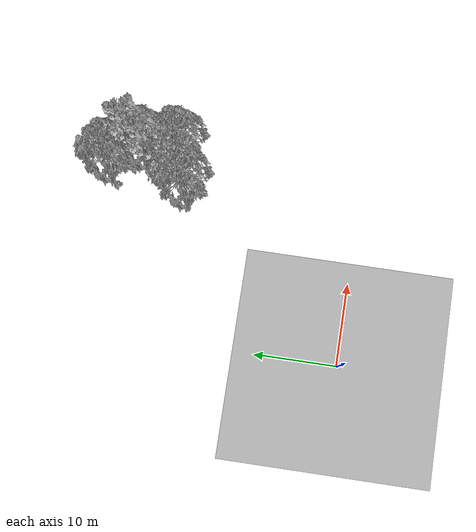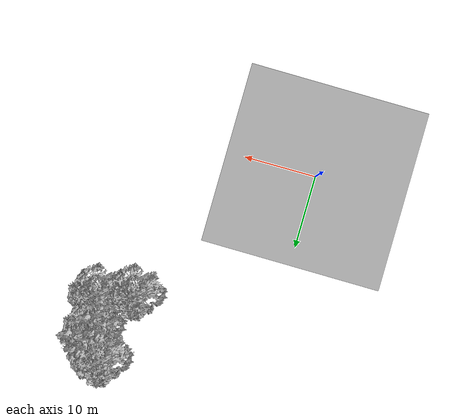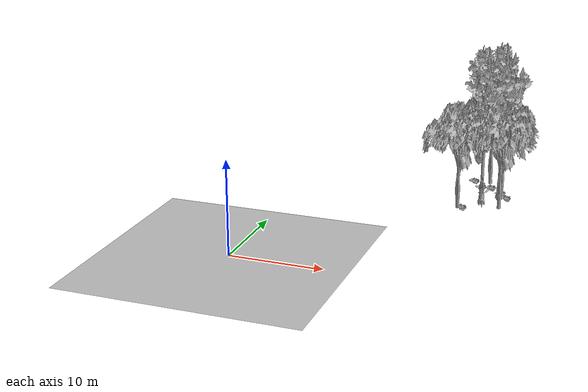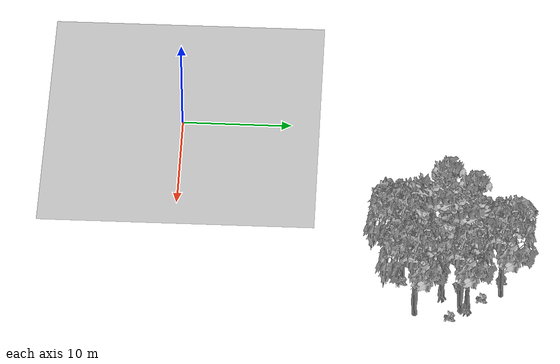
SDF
<sdf version="1.7">
 <world name="default">
  <model name="ground_plane">
   <static>1</static>
   <link name="link">
    <collision name="collision">
     <pose>-50 0 0 0 -0 0</pose>
     <geometry><plane><normal>0 0 1</normal><size>80 80</size></plane></geometry>
     <surface><contact><ode><min_depth>0.01</min_depth><max_vel>0</max_vel></ode></contact></surface>
    </collision>
    <visual name="grass">
     <cast_shadows>0</cast_shadows>
     <geometry>
      <mesh>
       <scale>0.46714285714285714 0.46714285714285714 0.1</scale>
       <uri>file://grass_plane/meshes/grass_plane.dae</uri>
      </mesh>
     </geometry>
    </visual>
   </link>
  </model>
  <model name="Tree 43">
   <static>1</static>
   <pose>21.734284206595447 26.603632758605613 0 1.57079 -0 0</pose>
   <link name="link">
    <collision name="collision">
     <geometry><mesh><scale>3.5 5 3.5</scale><uri>model://tree_9/meshes/tree_9.obj</uri></mesh></geometry>
    </collision>
    <visual name="visual">
     <geometry><mesh><scale>3.5 5 3.5</scale><uri>model://tree_9/meshes/tree_9.obj</uri></mesh></geometry>
    </visual>
   </link>
  </model>
  <model name="Tree 157">
   <static>1</static>
   <pose>22.01760316864906 25.9852459080481 0 1.57079 -0 0</pose>
   <link name="link">
    <collision name="collision">
     <geometry><mesh><scale>3.5 5 3.5</scale><uri>model://tree_2/meshes/tree_2.obj</uri></mesh></geometry>
    </collision>
    <visual name="visual">
     <geometry><mesh><scale>3.5 5 3.5</scale><uri>model://tree_2/meshes/tree_2.obj</uri></mesh></geometry>
    </visual>
   </link>
  </model>
  <model name="Tree 228">
   <static>1</static>
   <pose>19.984692346899422 29.57818529093589 0 1.57079 -0 0</pose>
   <link name="link">
    <collision name="collision">
     <geometry><mesh><scale>3.5 5 3.5</scale><uri>model://tree_2/meshes/tree_2.obj</uri></mesh></geometry>
    </collision>
    <visual name="visual">
     <geometry><mesh><scale>3.5 5 3.5</scale><uri>model://tree_2/meshes/tree_2.obj</uri></mesh></geometry>
    </visual>
   </link>
  </model>
  <model name="Tree 364">
   <static>1</static>
   <pose>20.186980399460893 24.300929245325946 0 1.57079 -0 0</pose>
   <link name="link">
    <collision name="collision">
     <geometry><mesh><scale>3.5 5 3.5</scale><uri>model://tree_9/meshes/tree_9.obj</uri></mesh></geometry>
    </collision>
    <visual name="visual">
     <geometry><mesh><scale>3.5 5 3.5</scale><uri>model://tree_9/meshes/tree_9.obj</uri></mesh></geometry>
    </visual>
   </link>
  </model>
  <model name="Tree 482">
   <static>1</static>
   <pose>22.537355044839053 21.941083048430173 0 1.57079 -0 0</pose>
   <link name="link">
    <collision name="collision">
     <geometry><mesh><scale>3.5 5 3.5</scale><uri>model://tree_2/meshes/tree_2.obj</uri></mesh></geometry>
    </collision>
    <visual name="visual">
     <geometry><mesh><scale>3.5 5 3.5</scale><uri>model://tree_2/meshes/tree_2.obj</uri></mesh></geometry>
    </visual>
   </link>
  </model>
  <model name="Tree 538">
   <static>1</static>
   <pose>18.18340684391665 20.73070012771089 0 1.57079 -0 0</pose>
   <link name="link">
    <collision name="collision">
     <geometry><mesh><scale>3.5 5 3.5</scale><uri>model://tree_2/meshes/tree_2.obj</uri></mesh></geometry>
    </collision>
    <visual name="visual">
     <geometry><mesh><scale>3.5 5 3.5</scale><uri>model://tree_2/meshes/tree_2.obj</uri></mesh></geometry>
    </visual>
   </link>
  </model>
  <model name="Bush 62">
   <static>1</static>
   <pose>18.23089222828149 29.64711962599148 0 1.57079 -0 0</pose>
   <link name="link">
    <collision name="collision">
     <geometry><mesh><scale>2 2 2</scale><uri>model://bush_2/meshes/bush_2.obj</uri></mesh></geometry>
     <surface><contact><collide_without_contact>false</collide_without_contact></contact></surface>
    </collision>
    <visual name="visual">
     <geometry><mesh><scale>2 2 2</scale><uri>model://bush_2/meshes/bush_2.obj</uri></mesh></geometry>
    </visual>
   </link>
  </model>
  <model name="Bush 190">
   <static>1</static>
   <pose>19.868472459729674 25.778597391186537 0 1.57079 -0 0</pose>
   <link name="link">
    <collision name="collision">
     <geometry><mesh><scale>2 2 2</scale><uri>model://bush_4/meshes/bush_4.obj</uri></mesh></geometry>
     <surface><contact><collide_without_contact>false</collide_without_contact></contact></surface>
    </collision>
    <visual name="visual">
     <geometry><mesh><scale>2 2 2</scale><uri>model://bush_4/meshes/bush_4.obj</uri></mesh></geometry>
    </visual>
   </link>
  </model>
  <model name="Bush 351">
   <static>1</static>
   <pose>22.804737122700487 25.08548723873122 0 1.57079 -0 0</pose>
   <link name="link">
    <collision name="collision">
     <geometry><mesh><scale>2 2 2</scale><uri>model://bush_2/meshes/bush_2.obj</uri></mesh></geometry>
     <surface><contact><collide_without_contact>false</collide_without_contact></contact></surface>
    </collision>
    <visual name="visual">
     <geometry><mesh><scale>2 2 2</scale><uri>model://bush_2/meshes/bush_2.obj</uri></mesh></geometry>
    </visual>
   </link>
  </model>
  <model name="Bush 487">
   <static>1</static>
   <pose>18.72712409055559 20.692120975518897 0 1.57079 -0 0</pose>
   <link name="link">
    <collision name="collision">
     <geometry><mesh><scale>2 2 2</scale><uri>model://bush_2/meshes/bush_2.obj</uri></mesh></geometry>
     <surface><contact><collide_without_contact>false</collide_without_contact></contact></surface>
    </collision>
    <visual name="visual">
     <geometry><mesh><scale>2 2 2</scale><uri>model://bush_2/meshes/bush_2.obj</uri></mesh></geometry>
    </visual>
   </link>
  </model>
  <model name="Bush 527">
   <static>1</static>
   <pose>21.92564116486023 26.433040263446273 0 1.57079 -0 0</pose>
   <link name="link">
    <collision name="collision">
     <geometry><mesh><scale>2 2 2</scale><uri>model://bush_2/meshes/bush_2.obj</uri></mesh></geometry>
     <surface><contact><collide_without_contact>false</collide_without_contact></contact></surface>
    </collision>
    <visual name="visual">
     <geometry><mesh><scale>2 2 2</scale><uri>model://bush_2/meshes/bush_2.obj</uri></mesh></geometry>
    </visual>
   </link>
  </model>
  <model name="Bush 565">
   <static>1</static>
   <pose>20.520980552982657 27.89299831185683 0 1.57079 -0 0</pose>
   <link name="link">
    <collision name="collision">
     <geometry><mesh><scale>2 2 2</scale><uri>model://bush_2/meshes/bush_2.obj</uri></mesh></geometry>
     <surface><contact><collide_without_contact>false</collide_without_contact></contact></surface>
    </collision>
    <visual name="visual">
     <geometry><mesh><scale>2 2 2</scale><uri>model://bush_2/meshes/bush_2.obj</uri></mesh></geometry>
    </visual>
   </link>
  </model>
 </world>
</sdf>
